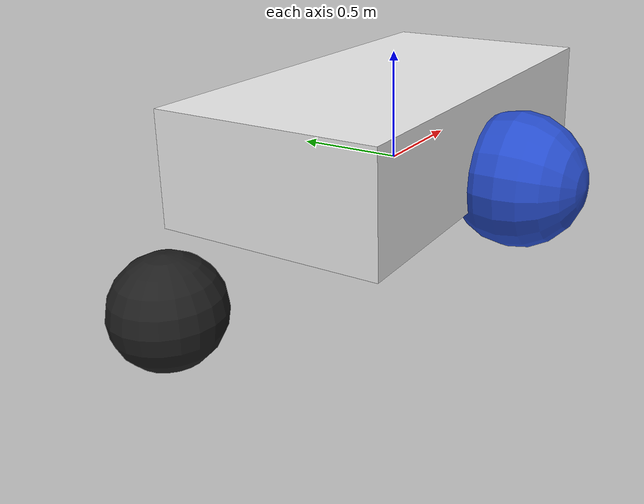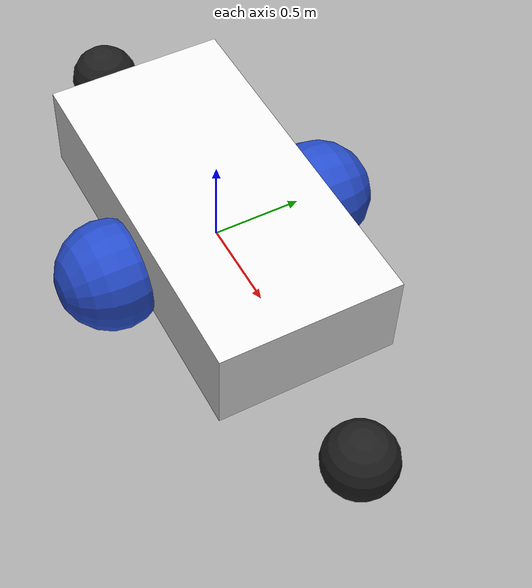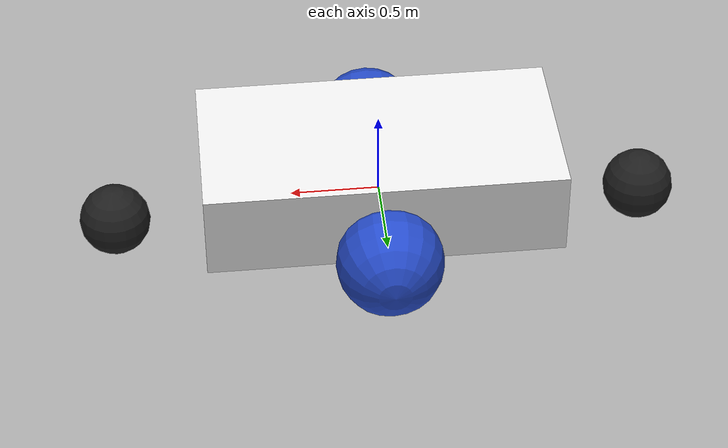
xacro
<?xml version="1.0"?>
<robot xmlns:xacro="http://www.ros.org/wiki/xacro">

    <link name="base_link"></link>

    <joint name="base_to_chassis" type="fixed">
        <parent link="base_link" />
        <child link="chassis" />
        <origin xyz="0 0 0.15" />
    </joint>

    <link name="chassis">
        <visual>
            <geometry>
                <box size="2 1 0.5" />
            </geometry>
            <material name="white" />
        </visual>
        <collision>
            <geometry>
                <box size="2 1 0.5" />
            </geometry>
        </collision>
        <inertial>
            <mass value="1.15" />
            <inertia ixx="0.13" ixy="0.0" ixz="0.0" iyy="0.7" iyz="0.0" izz="0.5" />
        </inertial>
    </link>

    <gazebo reference="chassis">
        <material>Gazebo/Orange</material>
    </gazebo>

    <joint name="base_to_left_wheel" type="continuous">
        <parent link="base_link" />
        <child link="left_wheel" />
        <origin rpy="-1.57075 0 0" xyz="0 0.625 0" />
        <axis rpy="0 0 0" xyz="0 0 1" />
        <limit effort="1000.0" lower="-1e50" upper="1e50" velocity="30"/>
        <dynamics damping="0.0" friction="0.0"/>
    </joint>

    <link name="left_wheel">
        <visual>
            <geometry>
                <sphere radius="0.3" />
            </geometry>
            <material name="blue" />
        </visual>
        <collision>
            <geometry>
                <sphere radius="0.3" />
            </geometry>
        </collision>
        <inertial>
            <mass value="2" />
            <inertia ixx="0.15" ixy="0.0" ixz="0.0" iyy="0.15" iyz="0.0" izz="0.5" />
        </inertial>
    </link>

    <gazebo reference="left_wheel">
        <mu1 value="10000.0" />
        <mu2 value="10000.0" />
        <kp value="1e13" />
        <kd value="1" />
        <material>Gazebo/Black</material>
    </gazebo>

    <joint name="base_to_right_wheel" type="continuous">
        <parent link="base_link" />
        <child link="right_wheel" />
        <origin rpy="-1.57075 0 0" xyz="0 -0.625 0" />
        <axis rpy="0 0 0" xyz="0 0 1" />
        <limit effort="1000.0" lower="-1e50" upper="1e50" velocity="30"/>
        <dynamics damping="0.0" friction="0.0"/>
    </joint>

    <link name="right_wheel">
        <collision>
            <geometry>
                <sphere radius="0.3" />
            </geometry>
        </collision>
        <visual>
            <geometry>
                <sphere radius="0.3" />
            </geometry>
            <material name="blue" />
        </visual>
        <inertial>
            <mass value="2" />
            <inertia ixx="0.15" ixy="0.0" ixz="0.0" iyy="0.15" iyz="0.0" izz="0.15" />
        </inertial>
    </link>

    <gazebo reference="right_wheel">
        <mu1 value="10000.0" />
        <mu2 value="10000.0" />
        <kp value="1e13" />
        <kd value="1" />
        <material>Gazebo/Black</material>
    </gazebo>

    <joint name="base_to_caster_wheel" type="fixed">
        <parent link="base_link" />
        <child link="caster_wheel" />
        <origin rpy="0 0 0" xyz="-1.5 0 -0.1" />
    </joint>

    <link name="caster_wheel">
        <collision>
            <geometry>
                <sphere radius="0.2" />
            </geometry>
        </collision>
        <visual>
            <geometry>
                <sphere radius="0.2" />
            </geometry>
            <material name="black" />
        </visual>
        <inertial>
            <mass value="3" />
            <inertia ixx="0.3" ixy="0.0" ixz="0.0" iyy="0.3" iyz="0.0" izz="0.3" />
        </inertial>
    </link>

    <gazebo reference="caster_wheel">
        <material>Gazebo/Black</material>
        <mu1>0.0</mu1>
    <mu2>0.0</mu2>
    </gazebo>

    <joint name="base_to_caster_wheel_2" type="fixed">
        <parent link="base_link" />
        <child link="caster_wheel_2" />
        <origin rpy="0 0 0" xyz="1.5 0 -0.1" />
    </joint>

    <link name="caster_wheel_2">
        <collision>
            <geometry>
                <sphere radius="0.2" />
            </geometry>
        </collision>
        <visual>
            <geometry>
                <sphere radius="0.2" />
            </geometry>
            <material name="black" />
        </visual>
        <inertial>
            <mass value="3" />
            <inertia ixx="0.3" ixy="0.0" ixz="0.0" iyy="0.3" iyz="0.0" izz="0.3" />
        </inertial>
    </link>

    <gazebo reference="caster_wheel_2">
        <material>Gazebo/Black</material>
        <mu1>0.0</mu1>
        <mu2>0.0</mu2>
    </gazebo>

</robot>
